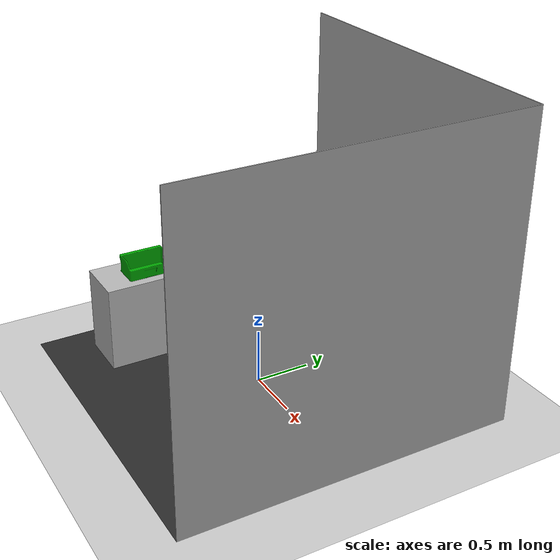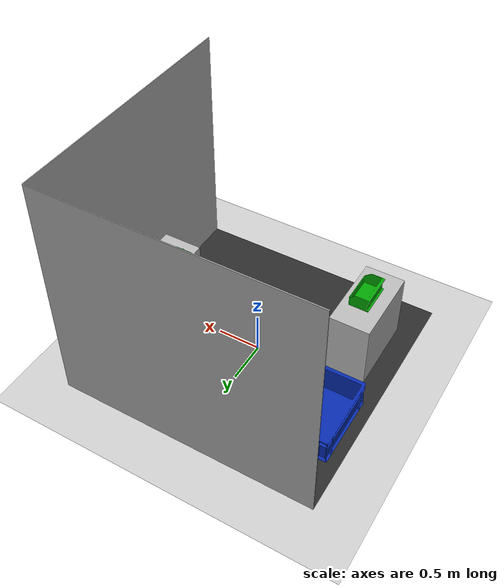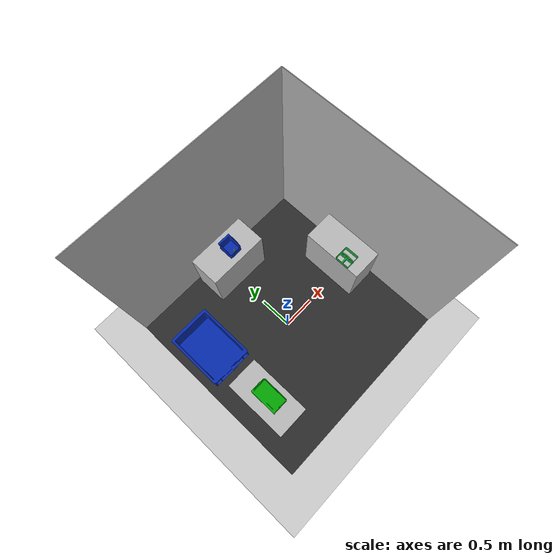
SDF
<sdf version="1.8">
 <world name="default">
  <plugin filename="gz-sim-physics-system" name="gz::sim::systems::Physics"/>
  <plugin filename="gz-sim-user-commands-system" name="gz::sim::systems::UserCommands"/>
  <plugin filename="gz-sim-scene-broadcaster-system" name="gz::sim::systems::SceneBroadcaster"/>
  <plugin filename="gz-sim-sensors-system" name="gz::sim::systems::Sensors">
   <render_engine>ogre2</render_engine>
  </plugin>
  <include><uri>model://ground_plane</uri></include>
  <include>
   <uri>model://fetchit_simple_env</uri>
   <name>fetchit_simple_env1</name>
   <pose>0 0 0.005 0 0 0</pose>
  </include>
  <include>
   <uri>model://caddy_green</uri>
   <name>caddy_green1</name>
   <pose>1.109024 -0.094681 0.814290 0 0 0</pose>
  </include>
  <include>
   <uri>model://gearbox_bolt</uri>
   <name>gearbox_bolt1</name>
   <pose>0.104571 1.127 0.81 0 0 0</pose>
  </include>
  <include>
   <uri>model://gearbox_bolt</uri>
   <name>gearbox_bolt2</name>
   <pose>0.109393 1.127 0.81 0 0 0</pose>
  </include>
  <include>
   <uri>model://fetchit_table</uri>
   <name>screw_bin_pick_station</name>
   <pose>0.04929 1.22163 0.0 0 0 0</pose>
  </include>
  <include>
   <uri>model://fetchit_table</uri>
   <name>kit_station</name>
   <pose>1.23491 0.087 0.0 0 0 -1.57</pose>
  </include>
  <include>
   <uri>model://fetchit_table</uri>
   <name>gearbox_pick_station</name>
   <pose>-1.03 -0.60962 0.0 0 0 1.57</pose>
  </include>
  <include>
   <uri>model://dropoff_box</uri>
   <name>dropoff_box1</name>
   <pose>-1.05471 0.54301 0.011069 0 0 0</pose>
  </include>
  <include><uri>model://100mmbin</uri><name>100mmbin1</name><pose>-1.0 -0.623425 0.801 0 0 1.57</pose></include>
  <include><uri>model://50mmbin</uri><name>50mmbin</name><pose>0.097790 1.2 0.801 0 0 0</pose></include>
  <light name="user_point_light_0" type="point">
   <pose>1.0 1.0 2.0 0 0 0</pose>
   <diffuse>1 1 1 1</diffuse>
   <specular>0.1 0.1 0.1 1</specular>
   <attenuation>
    <range>5</range>
    <constant>0.2</constant>
    <linear>0.01</linear>
    <quadratic>0.001</quadratic>
   </attenuation>
   <cast_shadows>0</cast_shadows>
   <direction>0 0 -1</direction>
  </light>
  <light name="user_point_light_1" type="point">
   <pose>-1.0 1.0 2.0 0 0 0</pose>
   <diffuse>1 1 1 1</diffuse>
   <specular>0.1 0.1 0.1 1</specular>
   <attenuation>
    <range>5</range>
    <constant>0.2</constant>
    <linear>0.01</linear>
    <quadratic>0.001</quadratic>
   </attenuation>
   <cast_shadows>0</cast_shadows>
   <direction>0 0 -1</direction>
  </light>
  <light name="user_point_light_2" type="point">
   <pose>-1.0 -1.0 2.0 0 0 0</pose>
   <diffuse>1 1 1 1</diffuse>
   <specular>0.1 0.1 0.1 1</specular>
   <attenuation>
    <range>5</range>
    <constant>0.2</constant>
    <linear>0.01</linear>
    <quadratic>0.001</quadratic>
   </attenuation>
   <cast_shadows>0</cast_shadows>
   <direction>0 0 -1</direction>
  </light>
  <light name="user_point_light_3" type="point">
   <pose>1.0 -1.0 2.0 0 0 0</pose>
   <diffuse>1 1 1 1</diffuse>
   <specular>0.1 0.1 0.1 1</specular>
   <attenuation>
    <range>5</range>
    <constant>0.2</constant>
    <linear>0.01</linear>
    <quadratic>0.001</quadratic>
   </attenuation>
   <cast_shadows>0</cast_shadows>
   <direction>0 0 -1</direction>
  </light>
 </world>
</sdf>

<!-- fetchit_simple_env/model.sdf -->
<sdf version='1.4'>
  <model name="fetchit_simple_env">
      <static>1</static>
      <link name='link'>
        <visual name='visual'>
          <geometry>
            <mesh>
              <uri>model://fetchit_simple_env/meshes/fetchit_env_barebones_v3.dae</uri>
              <scale>1 1 1</scale>
            </mesh>
          </geometry>
        </visual>
        <velocity_decay>
          <linear>0.000000</linear>
          <angular>0.000000</angular>
        </velocity_decay>
        <self_collide>0</self_collide>
        <kinematic>0</kinematic>
        <gravity>1</gravity>
      </link>
  </model>
</sdf>

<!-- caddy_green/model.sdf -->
<sdf version='1.4'>
  <model name="caddy_green">
      <static>0</static>
      <link name='link'>
        <inertial>
          <mass>0.0680389</mass>
          <inertia>
            <ixx>0.00040636575898</ixx>
            <ixy>0.000000</ixy>
            <ixz>0.000000</ixz>
            <iyy>0.00040636575898</iyy>
            <iyz>0.000000</iyz>
            <izz>0.000625974918075</izz>
          </inertia>
        </inertial>
        <collision name='collision'>
          <geometry>
            <mesh>
              <uri>model://caddy_green/meshes/Romanoff_Small_Utility_Caddy_cof.stl</uri>
              <scale>1 1 1</scale>
            </mesh>
          </geometry>
          <surface>
            <friction>
              <ode>
                <mu>1.0</mu>
                <mu2>1.0</mu2>
              </ode>
            </friction>
          </surface>
        </collision>

        <visual name='visual'>
          <geometry>
            <mesh>
              <uri>model://caddy_green/meshes/Romanoff_Small_Utility_Caddy_cof_green.dae</uri>
              <scale>1 1 1</scale>
            </mesh>
          </geometry>
        </visual>
        <velocity_decay>
          <linear>0.000000</linear>
          <angular>0.000000</angular>
        </velocity_decay>
        <self_collide>0</self_collide>
        <kinematic>0</kinematic>
        <gravity>1</gravity>
      </link>
  </model>
</sdf>

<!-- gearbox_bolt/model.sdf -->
<sdf version='1.4'>
  <model name="gearbox_bolt">
      <static>0</static>
      <link name='link'>
        <inertial>
          <pose>0 0 0.030633 0 0 0</pose>
          <mass>0.0592855</mass>
          <inertia>
            <ixx>2.2977502034e-05</ixx>
            <ixy>0.000000</ixy>
            <ixz>0.000000</ixz>
            <iyy>2.29905352792e-05</iyy>
            <iyz>0.000000</iyz>
            <izz>8.87979175473e-06</izz>
          </inertia>
        </inertial>
        <collision name='collision'>
          <geometry>
            <mesh>
              <uri>model://gearbox_bolt/meshes/gear_bolt_simple.stl</uri>
              <scale>1 1 1</scale>
            </mesh>
          </geometry>
          <surface>
            <friction>
              <ode>
                <mu>30.0</mu>
                <mu2>30.0</mu2>
              </ode>
            </friction>
          </surface>
        </collision>
        <visual name='visual'>
          <geometry>
            <mesh>
              <uri>model://gearbox_bolt/meshes/screw_v1.dae</uri>
              <scale>1 1 1</scale>
            </mesh>
          </geometry>
        </visual>
        <velocity_decay>
          <linear>0.000000</linear>
          <angular>0.000000</angular>
        </velocity_decay>
        <self_collide>0</self_collide>
        <kinematic>0</kinematic>
        <gravity>1</gravity>
      </link>
  </model>
</sdf>

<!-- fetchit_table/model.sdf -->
<sdf version='1.4'>
  <model name="fetchit_table">
      <static>1</static>
      <link name='link'>
        <inertial>
          <mass>0.0592855</mass>
          <inertia>
            <ixx>2.31818050784e-05</ixx>
            <ixy>0.000000</ixy>
            <ixz>0.000000</ixz>
            <iyy>2.31851837098e-05</iyy>
            <iyz>0.000000</iyz>
            <izz>8.88944636856e-06</izz>
          </inertia>
        </inertial>
        <collision name='collision'>
          <geometry>
            <mesh>
              <uri>model://fetchit_table/meshes/simple.dae</uri>
              <scale>1 1 1</scale>
            </mesh>
          </geometry>
          <surface>
            <friction>
              <ode>
                <mu>30.0</mu>
                <mu2>30.0</mu2>
              </ode>
            </friction>
          </surface>
        </collision>
        <visual name='visual'>
          <geometry>
            <mesh>
              <uri>model://fetchit_table/meshes/tablefetchit_v2_materials.dae</uri>
              <scale>1 1 1</scale>
            </mesh>
          </geometry>
        </visual>
        <velocity_decay>
          <linear>0.000000</linear>
          <angular>0.000000</angular>
        </velocity_decay>
        <self_collide>0</self_collide>
        <kinematic>0</kinematic>
        <gravity>1</gravity>
      </link>
  </model>
</sdf>

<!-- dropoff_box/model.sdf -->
<sdf version='1.4'>
  <model name="dropoff_box">
      <static>1</static>
      <link name='link'>
        <inertial>
          <mass>1.0</mass>
          <inertia>
            <ixx>0.0755262496948</ixx>
            <ixy>0.000000</ixy>
            <ixz>0.000000</ixz>
            <iyy>0.0441608153271</iyy>
            <iyz>0.000000</iyz>
            <izz>0.1033038684</izz>
          </inertia>
        </inertial>
        <collision name='collision'>
          <geometry>
            <mesh>
              <uri>model://dropoff_box/meshes/box_v1.stl</uri>
              <scale>1 1 1</scale>
            </mesh>
          </geometry>
          <surface>
            <friction>
              <ode>
                <mu>30.0</mu>
                <mu2>30.0</mu2>
              </ode>
            </friction>
            <contact>
              <ode>
                <soft_cfm>0</soft_cfm>
    	          <soft_erp>0.2</soft_erp>
    	          <kp>1e+13</kp>
    	          <kd>1</kd>
    	          <max_vel>0.01</max_vel>
    	          <min_depth>0</min_depth>
              </ode>
            </contact>
          </surface>
        </collision>
        <visual name='visual'>
          <geometry>
            <mesh>
              <uri>model://dropoff_box/meshes/box_v1.dae</uri>
              <scale>1 1 1</scale>
            </mesh>
          </geometry>
        </visual>
        <velocity_decay>
          <linear>0.000000</linear>
          <angular>0.000000</angular>
        </velocity_decay>
        <self_collide>0</self_collide>
        <kinematic>0</kinematic>
        <gravity>1</gravity>
      </link>
  </model>
</sdf>

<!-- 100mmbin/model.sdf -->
<sdf version='1.4'>
  <model name="100mmbin">
      <static>1</static>
      <link name='link'>
        <inertial>
          <mass>0.0189132</mass>
          <inertia>
            <ixx>3.36060179959e-06</ixx>
            <ixy>0.000000</ixy>
            <ixz>0.000000</ixz>
            <iyy>3.36060179959e-06</iyy>
            <iyz>0.000000</iyz>
            <izz>1.34975977923e-06</izz>
          </inertia>
        </inertial>
        <collision name='collision'>
          <geometry>
            <mesh>
              <uri>model://100mmbin/meshes/100mm.stl</uri>
              <scale>1 1 1</scale>
            </mesh>
          </geometry>
          <surface>
            <friction>
              <ode>
                <mu>30.0</mu>
                <mu2>30.0</mu2>
              </ode>
            </friction>
          </surface>
        </collision>
        <visual name='visual'>
          <geometry>
            <mesh>
              <uri>model://100mmbin/meshes/100mm.dae</uri>
              <scale>1 1 1</scale>
            </mesh>
          </geometry>
        </visual>
        <velocity_decay>
          <linear>0.000000</linear>
          <angular>0.000000</angular>
        </velocity_decay>
        <self_collide>0</self_collide>
        <kinematic>0</kinematic>
        <gravity>1</gravity>
      </link>
  </model>
</sdf>

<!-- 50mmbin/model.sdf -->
<sdf version='1.4'>
  <model name="50mmbin">
      <static>1</static>
      <link name='link'>
        <inertial>
          <mass>0.0189132</mass>
          <inertia>
            <ixx>3.36060179959e-06</ixx>
            <ixy>0.000000</ixy>
            <ixz>0.000000</ixz>
            <iyy>3.36060179959e-06</iyy>
            <iyz>0.000000</iyz>
            <izz>1.34975977923e-06</izz>
          </inertia>
        </inertial>
        <collision name='collision'>
          <geometry>
            <mesh>
              <uri>model://50mmbin/meshes/50mm.stl</uri>
              <scale>1 1 1</scale>
            </mesh>
          </geometry>
          <surface>
            <friction>
              <ode>
                <mu>30.0</mu>
                <mu2>30.0</mu2>
              </ode>
            </friction>
          </surface>
        </collision>
        <visual name='visual'>
          <geometry>
            <mesh>
              <uri>model://50mmbin/meshes/50mm.dae</uri>
              <scale>1 1 1</scale>
            </mesh>
          </geometry>
        </visual>
        <velocity_decay>
          <linear>0.000000</linear>
          <angular>0.000000</angular>
        </velocity_decay>
        <self_collide>0</self_collide>
        <kinematic>0</kinematic>
        <gravity>1</gravity>
      </link>
  </model>
</sdf>
